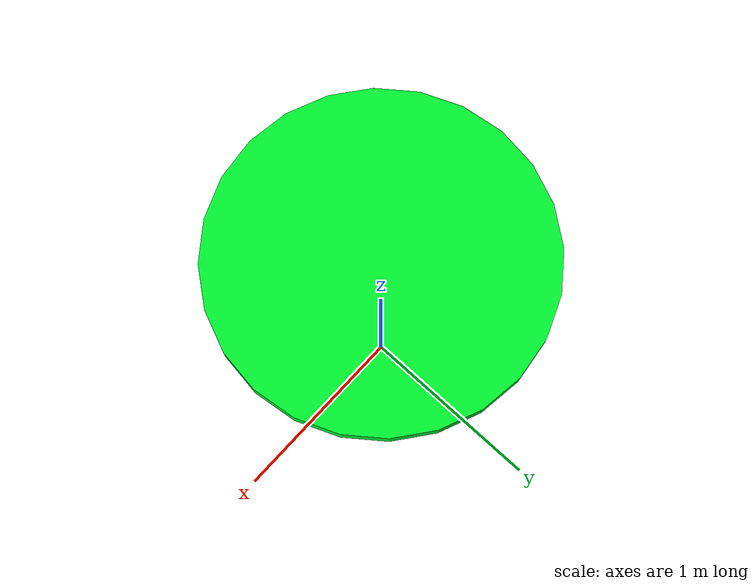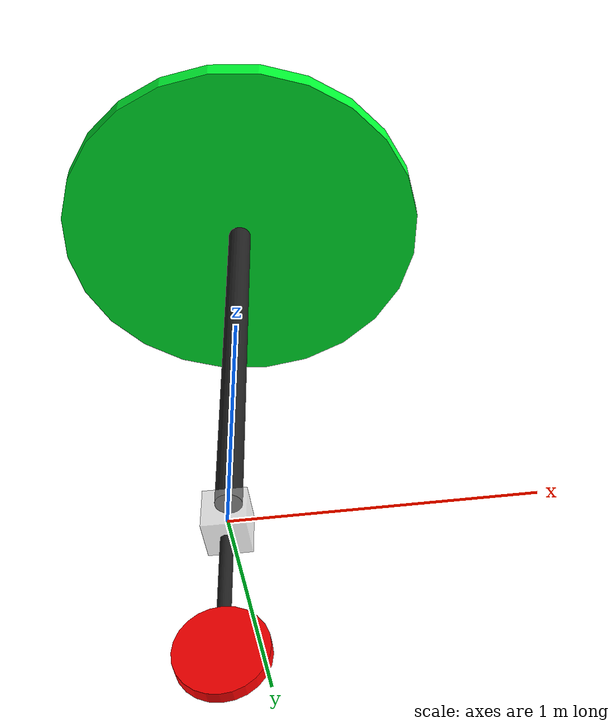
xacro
<?xml version="1.0"?>
<robot name="turtlebot" xmlns:xacro="http://wiki.ros.org/wiki/xacro">
  <!-- Configurable Properties -->
  <xacro:property name="platform_height" value="2.0"/>
  <xacro:property name="wheel_radius" value="0.15"/>
  <xacro:property name="max_velocity" value="2.0"/>
  <xacro:property name="gravity_accel" value="9.81"/>
  <!-- Other Properties -->
  <xacro:property name="remaining_length" value="${platform_height - wheel_radius}"/>
  <xacro:property name="cube_length" value="${wheel_radius}"/>
  <xacro:property name="stem_length" value="${0.85 * remaining_length}"/>
  <xacro:property name="wheel_stem_length" value="${0.15 * remaining_length}"/>

  <!-- Turtle Links -->
  <link name="base_link">
    <visual>
      <geometry>
        <box size="${cube_length} ${cube_length} ${cube_length}"/>
      </geometry>
      <material name="transparent_mat">
        <color rgba="0.8 0.8 0.8 0.5"/>
      </material>
    </visual>
    <collision>
      <geometry>
        <box size="${cube_length} ${cube_length} ${cube_length}"/>
      </geometry>
      <!-- defaults to origin (0 0 0) relative to link frame -->
    </collision>
  </link>

  <link name="stem">
    <visual>
      <geometry>
        <cylinder radius="${0.03 * stem_length}" length="${stem_length}"/>
      </geometry>
      <material name="grey_mat">
        <color rgba="0.128 0.128 0.128 1"/>
      </material>
    </visual>
    <collision>
      <geometry>
        <cylinder radius="${0.03 * stem_length}" length="${stem_length}"/>
      </geometry>
    </collision>
  </link>

  <link name="wheel_stem">
    <visual>
      <geometry>
        <cylinder radius="${0.15 * wheel_radius}" length="${wheel_stem_length}"/>
      </geometry>
      <material name="grey_mat">
        <color rgba="0.128 0.128 0.128 1"/>
      </material>
    </visual>
    <collision>
      <geometry>
        <cylinder radius="${0.15 * wheel_radius}" length="${wheel_stem_length}"/>
      </geometry>
    </collision>
  </link>

  <link name="platform">
    <visual>
      <geometry>
        <cylinder radius="${(0.49*stem_length)}" length="${0.05*stem_length}"/>
      </geometry>
      <material name="green_mat">
        <color rgba="0 1 0.2 1"/>
      </material>
    </visual>
    <collision>
      <geometry>
        <cylinder radius="${(0.49*stem_length)}" length="${0.05*stem_length}"/>
      </geometry>
    </collision>
  </link>

  <link name="wheel">
    <visual>
      <geometry>
        <cylinder radius="${wheel_radius}" length="${0.3*wheel_radius}"/>
      </geometry>
      <material name="black_mat">
        <color rgba="1 0 0 1"/>
      </material>
    </visual>
    <collision>
      <geometry>
        <cylinder radius="${wheel_radius}" length="${0.3*wheel_radius}"/>
      </geometry>
    </collision>
  </link>

  <!-- Joints -->
  <joint name="base_to_stem" type="fixed">
    <parent link="base_link"/>
    <child link="stem"/>
    <origin xyz="0.0 0.0 ${0.5*cube_length + 0.5*stem_length}"/>
  </joint>

  <joint name="stem_to_platform" type="continuous">
    <parent link="stem"/>
    <child link="platform"/>
    <axis xyz="0.0 1.0 0.0"/>
    <origin xyz="0.0 0.0 ${0.5*stem_length}"/>
  </joint>

  <joint name="base_to_wheel_stem" type="continuous">
    <parent link="base_link"/>
    <child link="wheel_stem"/>
    <axis xyz="0.0 0.0 1.0"/>
    <origin xyz="0.0 0.0 ${-1*(0.5*cube_length + 0.5*wheel_stem_length)}"/>
  </joint>

  <joint name="wheel_stem_to_wheel" type="continuous">
    <parent link="wheel_stem"/>
    <child link="wheel"/>
    <origin xyz="0.0 0.0 ${-0.5*wheel_stem_length-wheel_radius}" rpy="${pi/2} 0.0 0.0"/>
    <axis xyz="0.0 0.0 1.0"/>
  </joint>
</robot>
